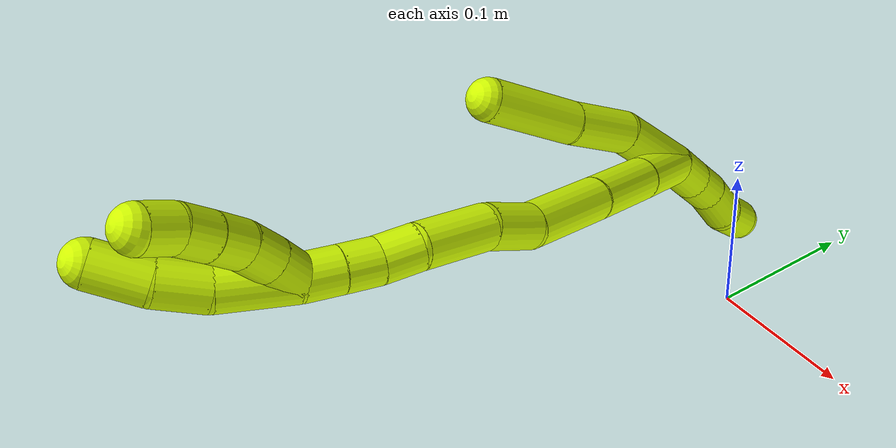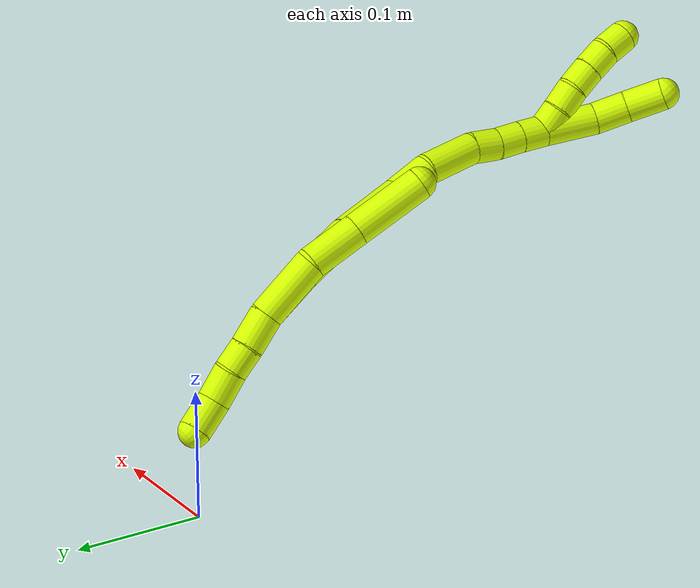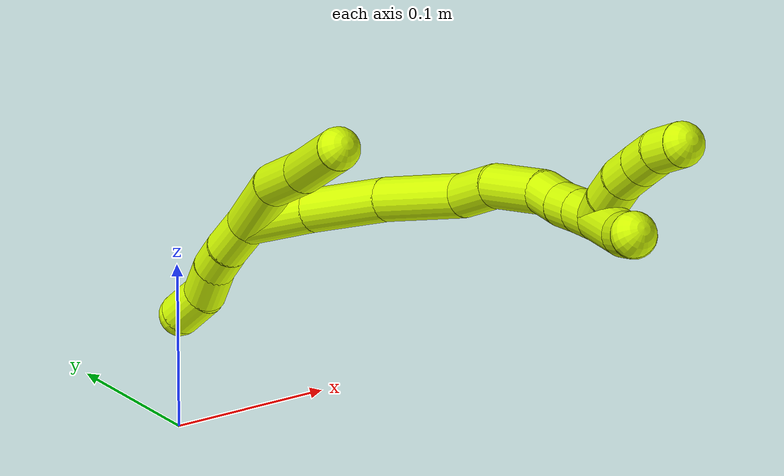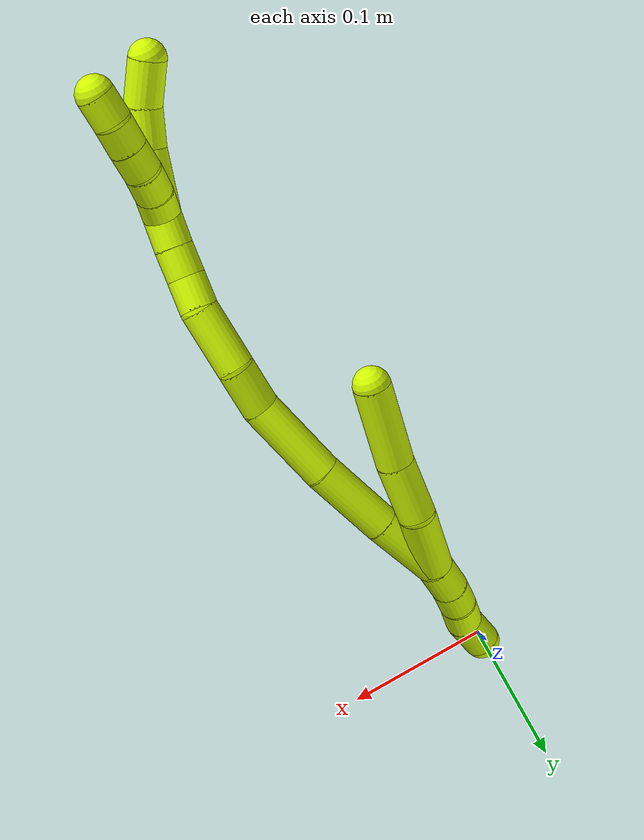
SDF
<sdf version="1.7">
 <world name="default">
  <model name="15">
   <static>0</static>
   <link name="15">
    <collision name="collision-cylinder-e_1_2_8">
     <pose>0.000799 0.004994 0.024537 -0.200799 0.031906 -0.003214</pose>
     <geometry><cylinder><radius>0.0125</radius><length>0.050106</length></cylinder></geometry>
     <surface>
      <friction><ode><mu>1.16</mu><mu2>1.16</mu2><slip1>0</slip1><slip2>0</slip2></ode></friction>
      <contact><ode><kp>1e+06</kp><kd>1</kd><max_vel>0</max_vel><min_depth>0.001</min_depth></ode></contact>
     </surface>
    </collision>
    <visual name="visual-cylinder-e_1_2_8">
     <pose>0.000799 0.004994 0.024537 -0.200799 0.031906 -0.003214</pose>
     <geometry><cylinder><radius>0.0125</radius><length>0.050106</length></cylinder></geometry>
     <material><ambient>0.835294 1 0 1</ambient></material>
    </visual>
    <collision name="collision-cylinder-e_2_8_9">
     <pose>0.000216 0.008682 0.069764 0.063096 -0.066568 -0.002102</pose>
     <geometry><cylinder><radius>0.0125</radius><length>0.041554</length></cylinder></geometry>
     <surface>
      <friction><ode><mu>1.16</mu><mu2>1.16</mu2><slip1>0</slip1><slip2>0</slip2></ode></friction>
      <contact><ode><kp>1e+06</kp><kd>1</kd><max_vel>0</max_vel><min_depth>0.001</min_depth></ode></contact>
     </surface>
    </collision>
    <visual name="visual-cylinder-e_2_8_9">
     <pose>0.000216 0.008682 0.069764 0.063096 -0.066568 -0.002102</pose>
     <geometry><cylinder><radius>0.0125</radius><length>0.041554</length></cylinder></geometry>
     <material><ambient>0.835294 1 0 1</ambient></material>
    </visual>
    <collision name="collision-cylinder-e_3_9_6">
     <pose>-0.004616 0.007931 0.119413 -0.019218 -0.11856 0.001141</pose>
     <geometry><cylinder><radius>0.0125</radius><length>0.05834</length></cylinder></geometry>
     <surface>
      <friction><ode><mu>1.16</mu><mu2>1.16</mu2><slip1>0</slip1><slip2>0</slip2></ode></friction>
      <contact><ode><kp>1e+06</kp><kd>1</kd><max_vel>0</max_vel><min_depth>0.001</min_depth></ode></contact>
     </surface>
    </collision>
    <visual name="visual-cylinder-e_3_9_6">
     <pose>-0.004616 0.007931 0.119413 -0.019218 -0.11856 0.001141</pose>
     <geometry><cylinder><radius>0.0125</radius><length>0.05834</length></cylinder></geometry>
     <material><ambient>0.835294 1 0 1</ambient></material>
    </visual>
    <collision name="collision-cylinder-e_1_2_10">
     <pose>-0.003277 -0.002464 -0.013181 2.95681 -0.239653 -1.8298</pose>
     <geometry><cylinder><radius>0.0125</radius><length>0.027608</length></cylinder></geometry>
     <surface>
      <friction><ode><mu>1.16</mu><mu2>1.16</mu2><slip1>0</slip1><slip2>0</slip2></ode></friction>
      <contact><ode><kp>1e+06</kp><kd>1</kd><max_vel>0</max_vel><min_depth>0.001</min_depth></ode></contact>
     </surface>
    </collision>
    <visual name="visual-cylinder-e_1_2_10">
     <pose>-0.003277 -0.002464 -0.013181 2.95681 -0.239653 -1.8298</pose>
     <geometry><cylinder><radius>0.0125</radius><length>0.027608</length></cylinder></geometry>
     <material><ambient>0.835294 1 0 1</ambient></material>
    </visual>
    <collision name="collision-cylinder-e_2_10_11">
     <pose>-0.008096 -0.007185 -0.036319 2.91868 -0.150002 -1.18252</pose>
     <geometry><cylinder><radius>0.0125</radius><length>0.020651</length></cylinder></geometry>
     <surface>
      <friction><ode><mu>1.16</mu><mu2>1.16</mu2><slip1>0</slip1><slip2>0</slip2></ode></friction>
      <contact><ode><kp>1e+06</kp><kd>1</kd><max_vel>0</max_vel><min_depth>0.001</min_depth></ode></contact>
     </surface>
    </collision>
    <visual name="visual-cylinder-e_2_10_11">
     <pose>-0.008096 -0.007185 -0.036319 2.91868 -0.150002 -1.18252</pose>
     <geometry><cylinder><radius>0.0125</radius><length>0.020651</length></cylinder></geometry>
     <material><ambient>0.835294 1 0 1</ambient></material>
    </visual>
    <collision name="collision-cylinder-e_3_11_12">
     <pose>-0.01171 -0.014164 -0.057897 2.75558 -0.163649 -0.794579</pose>
     <geometry><cylinder><radius>0.0125</radius><length>0.025428</length></cylinder></geometry>
     <surface>
      <friction><ode><mu>1.16</mu><mu2>1.16</mu2><slip1>0</slip1><slip2>0</slip2></ode></friction>
      <contact><ode><kp>1e+06</kp><kd>1</kd><max_vel>0</max_vel><min_depth>0.001</min_depth></ode></contact>
     </surface>
    </collision>
    <visual name="visual-cylinder-e_3_11_12">
     <pose>-0.01171 -0.014164 -0.057897 2.75558 -0.163649 -0.794579</pose>
     <geometry><cylinder><radius>0.0125</radius><length>0.025428</length></cylinder></geometry>
     <material><ambient>0.835294 1 0 1</ambient></material>
    </visual>
    <collision name="collision-cylinder-e_4_12_5">
     <pose>-0.017354 -0.019631 -0.082159 3.08279 -0.274939 -2.72265</pose>
     <geometry><cylinder><radius>0.0125</radius><length>0.026314</length></cylinder></geometry>
     <surface>
      <friction><ode><mu>1.16</mu><mu2>1.16</mu2><slip1>0</slip1><slip2>0</slip2></ode></friction>
      <contact><ode><kp>1e+06</kp><kd>1</kd><max_vel>0</max_vel><min_depth>0.001</min_depth></ode></contact>
     </surface>
    </collision>
    <visual name="visual-cylinder-e_4_12_5">
     <pose>-0.017354 -0.019631 -0.082159 3.08279 -0.274939 -2.72265</pose>
     <geometry><cylinder><radius>0.0125</radius><length>0.026314</length></cylinder></geometry>
     <material><ambient>0.835294 1 0 1</ambient></material>
    </visual>
    <collision name="collision-cylinder-e_1_2_13">
     <pose>0.006967 -0.007943 0.021303 0.356888 0.297353 0.054017</pose>
     <geometry><cylinder><radius>0.0125</radius><length>0.047559</length></cylinder></geometry>
     <surface>
      <friction><ode><mu>1.16</mu><mu2>1.16</mu2><slip1>0</slip1><slip2>0</slip2></ode></friction>
      <contact><ode><kp>1e+06</kp><kd>1</kd><max_vel>0</max_vel><min_depth>0.001</min_depth></ode></contact>
     </surface>
    </collision>
    <visual name="visual-cylinder-e_1_2_13">
     <pose>0.006967 -0.007943 0.021303 0.356888 0.297353 0.054017</pose>
     <geometry><cylinder><radius>0.0125</radius><length>0.047559</length></cylinder></geometry>
     <material><ambient>0.835294 1 0 1</ambient></material>
    </visual>
    <collision name="collision-cylinder-e_2_13_14">
     <pose>0.020507 -0.025425 0.067274 0.369005 0.243588 0.045678</pose>
     <geometry><cylinder><radius>0.0125</radius><length>0.054503</length></cylinder></geometry>
     <surface>
      <friction><ode><mu>1.16</mu><mu2>1.16</mu2><slip1>0</slip1><slip2>0</slip2></ode></friction>
      <contact><ode><kp>1e+06</kp><kd>1</kd><max_vel>0</max_vel><min_depth>0.001</min_depth></ode></contact>
     </surface>
    </collision>
    <visual name="visual-cylinder-e_2_13_14">
     <pose>0.020507 -0.025425 0.067274 0.369005 0.243588 0.045678</pose>
     <geometry><cylinder><radius>0.0125</radius><length>0.054503</length></cylinder></geometry>
     <material><ambient>0.835294 1 0 1</ambient></material>
    </visual>
    <collision name="collision-cylinder-e_3_14_15">
     <pose>0.031449 -0.04627 0.118951 0.396393 0.148135 0.029803</pose>
     <geometry><cylinder><radius>0.0125</radius><length>0.059211</length></cylinder></geometry>
     <surface>
      <friction><ode><mu>1.16</mu><mu2>1.16</mu2><slip1>0</slip1><slip2>0</slip2></ode></friction>
      <contact><ode><kp>1e+06</kp><kd>1</kd><max_vel>0</max_vel><min_depth>0.001</min_depth></ode></contact>
     </surface>
    </collision>
    <visual name="visual-cylinder-e_3_14_15">
     <pose>0.031449 -0.04627 0.118951 0.396393 0.148135 0.029803</pose>
     <geometry><cylinder><radius>0.0125</radius><length>0.059211</length></cylinder></geometry>
     <material><ambient>0.835294 1 0 1</ambient></material>
    </visual>
    <collision name="collision-cylinder-e_4_15_16">
     <pose>0.036382 -0.060046 0.161776 0.15498 0.035133 0.002728</pose>
     <geometry><cylinder><radius>0.0125</radius><length>0.032031</length></cylinder></geometry>
     <surface>
      <friction><ode><mu>1.16</mu><mu2>1.16</mu2><slip1>0</slip1><slip2>0</slip2></ode></friction>
      <contact><ode><kp>1e+06</kp><kd>1</kd><max_vel>0</max_vel><min_depth>0.001</min_depth></ode></contact>
     </surface>
    </collision>
    <visual name="visual-cylinder-e_4_15_16">
     <pose>0.036382 -0.060046 0.161776 0.15498 0.035133 0.002728</pose>
     <geometry><cylinder><radius>0.0125</radius><length>0.032031</length></cylinder></geometry>
     <material><ambient>0.835294 1 0 1</ambient></material>
    </visual>
    <collision name="collision-cylinder-e_5_16_17">
     <pose>0.035485 -0.070671 0.197688 0.385442 -0.06719 -0.013116</pose>
     <geometry><cylinder><radius>0.0125</radius><length>0.043478</length></cylinder></geometry>
     <surface>
      <friction><ode><mu>1.16</mu><mu2>1.16</mu2><slip1>0</slip1><slip2>0</slip2></ode></friction>
      <contact><ode><kp>1e+06</kp><kd>1</kd><max_vel>0</max_vel><min_depth>0.001</min_depth></ode></contact>
     </surface>
    </collision>
    <visual name="visual-cylinder-e_5_16_17">
     <pose>0.035485 -0.070671 0.197688 0.385442 -0.06719 -0.013116</pose>
     <geometry><cylinder><radius>0.0125</radius><length>0.043478</length></cylinder></geometry>
     <material><ambient>0.835294 1 0 1</ambient></material>
    </visual>
    <collision name="collision-cylinder-e_6_17_18">
     <pose>0.030769 -0.083843 0.226962 0.500435 -0.301837 -0.077694</pose>
     <geometry><cylinder><radius>0.0125</radius><length>0.021906</length></cylinder></geometry>
     <surface>
      <friction><ode><mu>1.16</mu><mu2>1.16</mu2><slip1>0</slip1><slip2>0</slip2></ode></friction>
      <contact><ode><kp>1e+06</kp><kd>1</kd><max_vel>0</max_vel><min_depth>0.001</min_depth></ode></contact>
     </surface>
    </collision>
    <visual name="visual-cylinder-e_6_17_18">
     <pose>0.030769 -0.083843 0.226962 0.500435 -0.301837 -0.077694</pose>
     <geometry><cylinder><radius>0.0125</radius><length>0.021906</length></cylinder></geometry>
     <material><ambient>0.835294 1 0 1</ambient></material>
    </visual>
    <collision name="collision-cylinder-e_7_18_19">
     <pose>0.025057 -0.092461 0.245269 0.375553 -0.245186 -0.046815</pose>
     <geometry><cylinder><radius>0.0125</radius><length>0.020236</length></cylinder></geometry>
     <surface>
      <friction><ode><mu>1.16</mu><mu2>1.16</mu2><slip1>0</slip1><slip2>0</slip2></ode></friction>
      <contact><ode><kp>1e+06</kp><kd>1</kd><max_vel>0</max_vel><min_depth>0.001</min_depth></ode></contact>
     </surface>
    </collision>
    <visual name="visual-cylinder-e_7_18_19">
     <pose>0.025057 -0.092461 0.245269 0.375553 -0.245186 -0.046815</pose>
     <geometry><cylinder><radius>0.0125</radius><length>0.020236</length></cylinder></geometry>
     <material><ambient>0.835294 1 0 1</ambient></material>
    </visual>
    <collision name="collision-cylinder-e_8_19_1">
     <pose>0.019634 -0.099749 0.263815 0.37326 -0.28538 -0.054243</pose>
     <geometry><cylinder><radius>0.0125</radius><length>0.021076</length></cylinder></geometry>
     <surface>
      <friction><ode><mu>1.16</mu><mu2>1.16</mu2><slip1>0</slip1><slip2>0</slip2></ode></friction>
      <contact><ode><kp>1e+06</kp><kd>1</kd><max_vel>0</max_vel><min_depth>0.001</min_depth></ode></contact>
     </surface>
    </collision>
    <visual name="visual-cylinder-e_8_19_1">
     <pose>0.019634 -0.099749 0.263815 0.37326 -0.28538 -0.054243</pose>
     <geometry><cylinder><radius>0.0125</radius><length>0.021076</length></cylinder></geometry>
     <material><ambient>0.835294 1 0 1</ambient></material>
    </visual>
    <collision name="collision-cylinder-e_1_1_20">
     <pose>0.017375 -0.100228 0.282676 -0.327459 0.070811 -0.011703</pose>
     <geometry><cylinder><radius>0.0125</radius><length>0.02</length></cylinder></geometry>
     <surface>
      <friction><ode><mu>1.16</mu><mu2>1.16</mu2><slip1>0</slip1><slip2>0</slip2></ode></friction>
      <contact><ode><kp>1e+06</kp><kd>1</kd><max_vel>0</max_vel><min_depth>0.001</min_depth></ode></contact>
     </surface>
    </collision>
    <visual name="visual-cylinder-e_1_1_20">
     <pose>0.017375 -0.100228 0.282676 -0.327459 0.070811 -0.011703</pose>
     <geometry><cylinder><radius>0.0125</radius><length>0.02</length></cylinder></geometry>
     <material><ambient>0.835294 1 0 1</ambient></material>
    </visual>
    <collision name="collision-cylinder-e_2_20_21">
     <pose>0.019459 -0.094634 0.301734 -0.243181 0.138098 -0.016901</pose>
     <geometry><cylinder><radius>0.0125</radius><length>0.02</length></cylinder></geometry>
     <surface>
      <friction><ode><mu>1.16</mu><mu2>1.16</mu2><slip1>0</slip1><slip2>0</slip2></ode></friction>
      <contact><ode><kp>1e+06</kp><kd>1</kd><max_vel>0</max_vel><min_depth>0.001</min_depth></ode></contact>
     </surface>
    </collision>
    <visual name="visual-cylinder-e_2_20_21">
     <pose>0.019459 -0.094634 0.301734 -0.243181 0.138098 -0.016901</pose>
     <geometry><cylinder><radius>0.0125</radius><length>0.02</length></cylinder></geometry>
     <material><ambient>0.835294 1 0 1</ambient></material>
    </visual>
    <collision name="collision-cylinder-e_3_21_22">
     <pose>0.022182 -0.091667 0.321239 -0.058812 0.135049 -0.003978</pose>
     <geometry><cylinder><radius>0.0125</radius><length>0.02</length></cylinder></geometry>
     <surface>
      <friction><ode><mu>1.16</mu><mu2>1.16</mu2><slip1>0</slip1><slip2>0</slip2></ode></friction>
      <contact><ode><kp>1e+06</kp><kd>1</kd><max_vel>0</max_vel><min_depth>0.001</min_depth></ode></contact>
     </surface>
    </collision>
    <visual name="visual-cylinder-e_3_21_22">
     <pose>0.022182 -0.091667 0.321239 -0.058812 0.135049 -0.003978</pose>
     <geometry><cylinder><radius>0.0125</radius><length>0.02</length></cylinder></geometry>
     <material><ambient>0.835294 1 0 1</ambient></material>
    </visual>
    <collision name="collision-cylinder-e_4_22_23">
     <pose>0.024492 -0.090669 0.341076 -0.041743 0.096493 -0.002016</pose>
     <geometry><cylinder><radius>0.0125</radius><length>0.02</length></cylinder></geometry>
     <surface>
      <friction><ode><mu>1.16</mu><mu2>1.16</mu2><slip1>0</slip1><slip2>0</slip2></ode></friction>
      <contact><ode><kp>1e+06</kp><kd>1</kd><max_vel>0</max_vel><min_depth>0.001</min_depth></ode></contact>
     </surface>
    </collision>
    <visual name="visual-cylinder-e_4_22_23">
     <pose>0.024492 -0.090669 0.341076 -0.041743 0.096493 -0.002016</pose>
     <geometry><cylinder><radius>0.0125</radius><length>0.02</length></cylinder></geometry>
     <material><ambient>0.835294 1 0 1</ambient></material>
    </visual>
    <collision name="collision-cylinder-e_5_23_4">
     <pose>0.025923 -0.09187 0.360878 0.16249 0.046767 0.003809</pose>
     <geometry><cylinder><radius>0.0125</radius><length>0.02</length></cylinder></geometry>
     <surface>
      <friction><ode><mu>1.16</mu><mu2>1.16</mu2><slip1>0</slip1><slip2>0</slip2></ode></friction>
      <contact><ode><kp>1e+06</kp><kd>1</kd><max_vel>0</max_vel><min_depth>0.001</min_depth></ode></contact>
     </surface>
    </collision>
    <visual name="visual-cylinder-e_5_23_4">
     <pose>0.025923 -0.09187 0.360878 0.16249 0.046767 0.003809</pose>
     <geometry><cylinder><radius>0.0125</radius><length>0.02</length></cylinder></geometry>
     <material><ambient>0.835294 1 0 1</ambient></material>
    </visual>
    <collision name="collision-cylinder-e_1_1_24">
     <pose>0.008506 -0.108922 0.291832 0.286796 -0.398372 -0.058277</pose>
     <geometry><cylinder><radius>0.0125</radius><length>0.04208</length></cylinder></geometry>
     <surface>
      <friction><ode><mu>1.16</mu><mu2>1.16</mu2><slip1>0</slip1><slip2>0</slip2></ode></friction>
      <contact><ode><kp>1e+06</kp><kd>1</kd><max_vel>0</max_vel><min_depth>0.001</min_depth></ode></contact>
     </surface>
    </collision>
    <visual name="visual-cylinder-e_1_1_24">
     <pose>0.008506 -0.108922 0.291832 0.286796 -0.398372 -0.058277</pose>
     <geometry><cylinder><radius>0.0125</radius><length>0.04208</length></cylinder></geometry>
     <material><ambient>0.835294 1 0 1</ambient></material>
    </visual>
    <collision name="collision-cylinder-e_2_24_25">
     <pose>-0.005106 -0.115014 0.322987 0.04824 -0.409098 -0.010009</pose>
     <geometry><cylinder><radius>0.0125</radius><length>0.0274</length></cylinder></geometry>
     <surface>
      <friction><ode><mu>1.16</mu><mu2>1.16</mu2><slip1>0</slip1><slip2>0</slip2></ode></friction>
      <contact><ode><kp>1e+06</kp><kd>1</kd><max_vel>0</max_vel><min_depth>0.001</min_depth></ode></contact>
     </surface>
    </collision>
    <visual name="visual-cylinder-e_2_24_25">
     <pose>-0.005106 -0.115014 0.322987 0.04824 -0.409098 -0.010009</pose>
     <geometry><cylinder><radius>0.0125</radius><length>0.0274</length></cylinder></geometry>
     <material><ambient>0.835294 1 0 1</ambient></material>
    </visual>
    <collision name="collision-cylinder-e_3_25_3">
     <pose>-0.01824 -0.11373 0.34859 -0.143849 -0.527706 0.038923</pose>
     <geometry><cylinder><radius>0.0125</radius><length>0.03052</length></cylinder></geometry>
     <surface>
      <friction><ode><mu>1.16</mu><mu2>1.16</mu2><slip1>0</slip1><slip2>0</slip2></ode></friction>
      <contact><ode><kp>1e+06</kp><kd>1</kd><max_vel>0</max_vel><min_depth>0.001</min_depth></ode></contact>
     </surface>
    </collision>
    <visual name="visual-cylinder-e_3_25_3">
     <pose>-0.01824 -0.11373 0.34859 -0.143849 -0.527706 0.038923</pose>
     <geometry><cylinder><radius>0.0125</radius><length>0.03052</length></cylinder></geometry>
     <material><ambient>0.835294 1 0 1</ambient></material>
    </visual>
    <collision name="collision-sphere-3">
     <pose>-0.025924 -0.11184 0.361637 0 -0 0</pose>
     <geometry><sphere><radius>0.0125</radius></sphere></geometry>
     <surface>
      <friction><ode><mu>1.16</mu><mu2>1.16</mu2><slip1>0</slip1><slip2>0</slip2></ode></friction>
      <contact><ode><kp>1e+06</kp><kd>1</kd><max_vel>0</max_vel><min_depth>0.001</min_depth></ode></contact>
     </surface>
    </collision>
    <visual name="visual-sphere-3">
     <pose>-0.025924 -0.11184 0.361637 0 -0 0</pose>
     <geometry><sphere><radius>0.0125</radius></sphere></geometry>
     <material><ambient>0.835294 1 0 1</ambient></material>
    </visual>
    <collision name="collision-sphere-25">
     <pose>-0.010556 -0.11562 0.335542 0 -0 0</pose>
     <geometry><sphere><radius>0.0125</radius></sphere></geometry>
     <surface>
      <friction><ode><mu>1.16</mu><mu2>1.16</mu2><slip1>0</slip1><slip2>0</slip2></ode></friction>
      <contact><ode><kp>1e+06</kp><kd>1</kd><max_vel>0</max_vel><min_depth>0.001</min_depth></ode></contact>
     </surface>
    </collision>
    <visual name="visual-sphere-25">
     <pose>-0.010556 -0.11562 0.335542 0 -0 0</pose>
     <geometry><sphere><radius>0.0125</radius></sphere></geometry>
     <material><ambient>0.835294 1 0 1</ambient></material>
    </visual>
    <collision name="collision-sphere-24">
     <pose>0.000344 -0.114408 0.310432 0 -0 0</pose>
     <geometry><sphere><radius>0.0125</radius></sphere></geometry>
     <surface>
      <friction><ode><mu>1.16</mu><mu2>1.16</mu2><slip1>0</slip1><slip2>0</slip2></ode></friction>
      <contact><ode><kp>1e+06</kp><kd>1</kd><max_vel>0</max_vel><min_depth>0.001</min_depth></ode></contact>
     </surface>
    </collision>
    <visual name="visual-sphere-24">
     <pose>0.000344 -0.114408 0.310432 0 -0 0</pose>
     <geometry><sphere><radius>0.0125</radius></sphere></geometry>
     <material><ambient>0.835294 1 0 1</ambient></material>
    </visual>
    <collision name="collision-sphere-4">
     <pose>0.02639 -0.093486 0.370736 0 -0 0</pose>
     <geometry><sphere><radius>0.0125</radius></sphere></geometry>
     <surface>
      <friction><ode><mu>1.16</mu><mu2>1.16</mu2><slip1>0</slip1><slip2>0</slip2></ode></friction>
      <contact><ode><kp>1e+06</kp><kd>1</kd><max_vel>0</max_vel><min_depth>0.001</min_depth></ode></contact>
     </surface>
    </collision>
    <visual name="visual-sphere-4">
     <pose>0.02639 -0.093486 0.370736 0 -0 0</pose>
     <geometry><sphere><radius>0.0125</radius></sphere></geometry>
     <material><ambient>0.835294 1 0 1</ambient></material>
    </visual>
    <collision name="collision-sphere-23">
     <pose>0.025455 -0.090254 0.351021 0 -0 0</pose>
     <geometry><sphere><radius>0.0125</radius></sphere></geometry>
     <surface>
      <friction><ode><mu>1.16</mu><mu2>1.16</mu2><slip1>0</slip1><slip2>0</slip2></ode></friction>
      <contact><ode><kp>1e+06</kp><kd>1</kd><max_vel>0</max_vel><min_depth>0.001</min_depth></ode></contact>
     </surface>
    </collision>
    <visual name="visual-sphere-23">
     <pose>0.025455 -0.090254 0.351021 0 -0 0</pose>
     <geometry><sphere><radius>0.0125</radius></sphere></geometry>
     <material><ambient>0.835294 1 0 1</ambient></material>
    </visual>
    <collision name="collision-sphere-22">
     <pose>0.023528 -0.091085 0.331131 0 -0 0</pose>
     <geometry><sphere><radius>0.0125</radius></sphere></geometry>
     <surface>
      <friction><ode><mu>1.16</mu><mu2>1.16</mu2><slip1>0</slip1><slip2>0</slip2></ode></friction>
      <contact><ode><kp>1e+06</kp><kd>1</kd><max_vel>0</max_vel><min_depth>0.001</min_depth></ode></contact>
     </surface>
    </collision>
    <visual name="visual-sphere-22">
     <pose>0.023528 -0.091085 0.331131 0 -0 0</pose>
     <geometry><sphere><radius>0.0125</radius></sphere></geometry>
     <material><ambient>0.835294 1 0 1</ambient></material>
    </visual>
    <collision name="collision-sphere-21">
     <pose>0.020836 -0.092249 0.311348 0 -0 0</pose>
     <geometry><sphere><radius>0.0125</radius></sphere></geometry>
     <surface>
      <friction><ode><mu>1.16</mu><mu2>1.16</mu2><slip1>0</slip1><slip2>0</slip2></ode></friction>
      <contact><ode><kp>1e+06</kp><kd>1</kd><max_vel>0</max_vel><min_depth>0.001</min_depth></ode></contact>
     </surface>
    </collision>
    <visual name="visual-sphere-21">
     <pose>0.020836 -0.092249 0.311348 0 -0 0</pose>
     <geometry><sphere><radius>0.0125</radius></sphere></geometry>
     <material><ambient>0.835294 1 0 1</ambient></material>
    </visual>
    <collision name="collision-sphere-20">
     <pose>0.018083 -0.097019 0.292121 0 -0 0</pose>
     <geometry><sphere><radius>0.0125</radius></sphere></geometry>
     <surface>
      <friction><ode><mu>1.16</mu><mu2>1.16</mu2><slip1>0</slip1><slip2>0</slip2></ode></friction>
      <contact><ode><kp>1e+06</kp><kd>1</kd><max_vel>0</max_vel><min_depth>0.001</min_depth></ode></contact>
     </surface>
    </collision>
    <visual name="visual-sphere-20">
     <pose>0.018083 -0.097019 0.292121 0 -0 0</pose>
     <geometry><sphere><radius>0.0125</radius></sphere></geometry>
     <material><ambient>0.835294 1 0 1</ambient></material>
    </visual>
    <collision name="collision-sphere-11">
     <pose>-0.009639 -0.009442 -0.046276 0 -0 0</pose>
     <geometry><sphere><radius>0.0125</radius></sphere></geometry>
     <surface>
      <friction><ode><mu>1.16</mu><mu2>1.16</mu2><slip1>0</slip1><slip2>0</slip2></ode></friction>
      <contact><ode><kp>1e+06</kp><kd>1</kd><max_vel>0</max_vel><min_depth>0.001</min_depth></ode></contact>
     </surface>
    </collision>
    <visual name="visual-sphere-11">
     <pose>-0.009639 -0.009442 -0.046276 0 -0 0</pose>
     <geometry><sphere><radius>0.0125</radius></sphere></geometry>
     <material><ambient>0.835294 1 0 1</ambient></material>
    </visual>
    <collision name="collision-sphere-10">
     <pose>-0.006553 -0.004928 -0.026362 0 -0 0</pose>
     <geometry><sphere><radius>0.0125</radius></sphere></geometry>
     <surface>
      <friction><ode><mu>1.16</mu><mu2>1.16</mu2><slip1>0</slip1><slip2>0</slip2></ode></friction>
      <contact><ode><kp>1e+06</kp><kd>1</kd><max_vel>0</max_vel><min_depth>0.001</min_depth></ode></contact>
     </surface>
    </collision>
    <visual name="visual-sphere-10">
     <pose>-0.006553 -0.004928 -0.026362 0 -0 0</pose>
     <geometry><sphere><radius>0.0125</radius></sphere></geometry>
     <material><ambient>0.835294 1 0 1</ambient></material>
    </visual>
    <collision name="collision-sphere-6">
     <pose>-0.008066 0.008488 0.148373 0 -0 0</pose>
     <geometry><sphere><radius>0.0125</radius></sphere></geometry>
     <surface>
      <friction><ode><mu>1.16</mu><mu2>1.16</mu2><slip1>0</slip1><slip2>0</slip2></ode></friction>
      <contact><ode><kp>1e+06</kp><kd>1</kd><max_vel>0</max_vel><min_depth>0.001</min_depth></ode></contact>
     </surface>
    </collision>
    <visual name="visual-sphere-6">
     <pose>-0.008066 0.008488 0.148373 0 -0 0</pose>
     <geometry><sphere><radius>0.0125</radius></sphere></geometry>
     <material><ambient>0.835294 1 0 1</ambient></material>
    </visual>
    <collision name="collision-sphere-9">
     <pose>-0.001166 0.007374 0.090453 0 -0 0</pose>
     <geometry><sphere><radius>0.0125</radius></sphere></geometry>
     <surface>
      <friction><ode><mu>1.16</mu><mu2>1.16</mu2><slip1>0</slip1><slip2>0</slip2></ode></friction>
      <contact><ode><kp>1e+06</kp><kd>1</kd><max_vel>0</max_vel><min_depth>0.001</min_depth></ode></contact>
     </surface>
    </collision>
    <visual name="visual-sphere-9">
     <pose>-0.001166 0.007374 0.090453 0 -0 0</pose>
     <geometry><sphere><radius>0.0125</radius></sphere></geometry>
     <material><ambient>0.835294 1 0 1</ambient></material>
    </visual>
    <collision name="collision-sphere-2">
     <geometry><sphere><radius>0.0125</radius></sphere></geometry>
     <surface>
      <friction><ode><mu>1.16</mu><mu2>1.16</mu2><slip1>0</slip1><slip2>0</slip2></ode></friction>
      <contact><ode><kp>1e+06</kp><kd>1</kd><max_vel>0</max_vel><min_depth>0.001</min_depth></ode></contact>
     </surface>
    </collision>
    <visual name="visual-sphere-2">
     <geometry><sphere><radius>0.0125</radius></sphere></geometry>
     <material><ambient>0.835294 1 0 1</ambient></material>
    </visual>
    <collision name="collision-sphere-19">
     <pose>0.022601 -0.096061 0.2544 0 -0 0</pose>
     <geometry><sphere><radius>0.0125</radius></sphere></geometry>
     <surface>
      <friction><ode><mu>1.16</mu><mu2>1.16</mu2><slip1>0</slip1><slip2>0</slip2></ode></friction>
      <contact><ode><kp>1e+06</kp><kd>1</kd><max_vel>0</max_vel><min_depth>0.001</min_depth></ode></contact>
     </surface>
    </collision>
    <visual name="visual-sphere-19">
     <pose>0.022601 -0.096061 0.2544 0 -0 0</pose>
     <geometry><sphere><radius>0.0125</radius></sphere></geometry>
     <material><ambient>0.835294 1 0 1</ambient></material>
    </visual>
    <collision name="collision-sphere-8">
     <pose>0.001598 0.009989 0.049074 0 -0 0</pose>
     <geometry><sphere><radius>0.0125</radius></sphere></geometry>
     <surface>
      <friction><ode><mu>1.16</mu><mu2>1.16</mu2><slip1>0</slip1><slip2>0</slip2></ode></friction>
      <contact><ode><kp>1e+06</kp><kd>1</kd><max_vel>0</max_vel><min_depth>0.001</min_depth></ode></contact>
     </surface>
    </collision>
    <visual name="visual-sphere-8">
     <pose>0.001598 0.009989 0.049074 0 -0 0</pose>
     <geometry><sphere><radius>0.0125</radius></sphere></geometry>
     <material><ambient>0.835294 1 0 1</ambient></material>
    </visual>
    <collision name="collision-sphere-12">
     <pose>-0.013782 -0.018887 -0.069518 0 -0 0</pose>
     <geometry><sphere><radius>0.0125</radius></sphere></geometry>
     <surface>
      <friction><ode><mu>1.16</mu><mu2>1.16</mu2><slip1>0</slip1><slip2>0</slip2></ode></friction>
      <contact><ode><kp>1e+06</kp><kd>1</kd><max_vel>0</max_vel><min_depth>0.001</min_depth></ode></contact>
     </surface>
    </collision>
    <visual name="visual-sphere-12">
     <pose>-0.013782 -0.018887 -0.069518 0 -0 0</pose>
     <geometry><sphere><radius>0.0125</radius></sphere></geometry>
     <material><ambient>0.835294 1 0 1</ambient></material>
    </visual>
    <collision name="collision-sphere-5">
     <pose>-0.020926 -0.020376 -0.094799 0 -0 0</pose>
     <geometry><sphere><radius>0.0125</radius></sphere></geometry>
     <surface>
      <friction><ode><mu>1.16</mu><mu2>1.16</mu2><slip1>0</slip1><slip2>0</slip2></ode></friction>
      <contact><ode><kp>1e+06</kp><kd>1</kd><max_vel>0</max_vel><min_depth>0.001</min_depth></ode></contact>
     </surface>
    </collision>
    <visual name="visual-sphere-5">
     <pose>-0.020926 -0.020376 -0.094799 0 -0 0</pose>
     <geometry><sphere><radius>0.0125</radius></sphere></geometry>
     <material><ambient>0.835294 1 0 1</ambient></material>
    </visual>
    <collision name="collision-sphere-13">
     <pose>0.013934 -0.015886 0.042607 0 -0 0</pose>
     <geometry><sphere><radius>0.0125</radius></sphere></geometry>
     <surface>
      <friction><ode><mu>1.16</mu><mu2>1.16</mu2><slip1>0</slip1><slip2>0</slip2></ode></friction>
      <contact><ode><kp>1e+06</kp><kd>1</kd><max_vel>0</max_vel><min_depth>0.001</min_depth></ode></contact>
     </surface>
    </collision>
    <visual name="visual-sphere-13">
     <pose>0.013934 -0.015886 0.042607 0 -0 0</pose>
     <geometry><sphere><radius>0.0125</radius></sphere></geometry>
     <material><ambient>0.835294 1 0 1</ambient></material>
    </visual>
    <collision name="collision-sphere-14">
     <pose>0.02708 -0.034964 0.09194 0 -0 0</pose>
     <geometry><sphere><radius>0.0125</radius></sphere></geometry>
     <surface>
      <friction><ode><mu>1.16</mu><mu2>1.16</mu2><slip1>0</slip1><slip2>0</slip2></ode></friction>
      <contact><ode><kp>1e+06</kp><kd>1</kd><max_vel>0</max_vel><min_depth>0.001</min_depth></ode></contact>
     </surface>
    </collision>
    <visual name="visual-sphere-14">
     <pose>0.02708 -0.034964 0.09194 0 -0 0</pose>
     <geometry><sphere><radius>0.0125</radius></sphere></geometry>
     <material><ambient>0.835294 1 0 1</ambient></material>
    </visual>
    <collision name="collision-sphere-15">
     <pose>0.035819 -0.057575 0.145962 0 -0 0</pose>
     <geometry><sphere><radius>0.0125</radius></sphere></geometry>
     <surface>
      <friction><ode><mu>1.16</mu><mu2>1.16</mu2><slip1>0</slip1><slip2>0</slip2></ode></friction>
      <contact><ode><kp>1e+06</kp><kd>1</kd><max_vel>0</max_vel><min_depth>0.001</min_depth></ode></contact>
     </surface>
    </collision>
    <visual name="visual-sphere-15">
     <pose>0.035819 -0.057575 0.145962 0 -0 0</pose>
     <geometry><sphere><radius>0.0125</radius></sphere></geometry>
     <material><ambient>0.835294 1 0 1</ambient></material>
    </visual>
    <collision name="collision-sphere-16">
     <pose>0.036944 -0.062516 0.17759 0 -0 0</pose>
     <geometry><sphere><radius>0.0125</radius></sphere></geometry>
     <surface>
      <friction><ode><mu>1.16</mu><mu2>1.16</mu2><slip1>0</slip1><slip2>0</slip2></ode></friction>
      <contact><ode><kp>1e+06</kp><kd>1</kd><max_vel>0</max_vel><min_depth>0.001</min_depth></ode></contact>
     </surface>
    </collision>
    <visual name="visual-sphere-16">
     <pose>0.036944 -0.062516 0.17759 0 -0 0</pose>
     <geometry><sphere><radius>0.0125</radius></sphere></geometry>
     <material><ambient>0.835294 1 0 1</ambient></material>
    </visual>
    <collision name="collision-sphere-17">
     <pose>0.034025 -0.078826 0.217786 0 -0 0</pose>
     <geometry><sphere><radius>0.0125</radius></sphere></geometry>
     <surface>
      <friction><ode><mu>1.16</mu><mu2>1.16</mu2><slip1>0</slip1><slip2>0</slip2></ode></friction>
      <contact><ode><kp>1e+06</kp><kd>1</kd><max_vel>0</max_vel><min_depth>0.001</min_depth></ode></contact>
     </surface>
    </collision>
    <visual name="visual-sphere-17">
     <pose>0.034025 -0.078826 0.217786 0 -0 0</pose>
     <geometry><sphere><radius>0.0125</radius></sphere></geometry>
     <material><ambient>0.835294 1 0 1</ambient></material>
    </visual>
    <collision name="collision-sphere-18">
     <pose>0.027513 -0.088861 0.236137 0 -0 0</pose>
     <geometry><sphere><radius>0.0125</radius></sphere></geometry>
     <surface>
      <friction><ode><mu>1.16</mu><mu2>1.16</mu2><slip1>0</slip1><slip2>0</slip2></ode></friction>
      <contact><ode><kp>1e+06</kp><kd>1</kd><max_vel>0</max_vel><min_depth>0.001</min_depth></ode></contact>
     </surface>
    </collision>
    <visual name="visual-sphere-18">
     <pose>0.027513 -0.088861 0.236137 0 -0 0</pose>
     <geometry><sphere><radius>0.0125</radius></sphere></geometry>
     <material><ambient>0.835294 1 0 1</ambient></material>
    </visual>
    <collision name="collision-sphere-1">
     <pose>0.016667 -0.103436 0.273231 0 -0 0</pose>
     <geometry><sphere><radius>0.0125</radius></sphere></geometry>
     <surface>
      <friction><ode><mu>1.16</mu><mu2>1.16</mu2><slip1>0</slip1><slip2>0</slip2></ode></friction>
      <contact><ode><kp>1e+06</kp><kd>1</kd><max_vel>0</max_vel><min_depth>0.001</min_depth></ode></contact>
     </surface>
    </collision>
    <visual name="visual-sphere-1">
     <pose>0.016667 -0.103436 0.273231 0 -0 0</pose>
     <geometry><sphere><radius>0.0125</radius></sphere></geometry>
     <material><ambient>0.835294 1 0 1</ambient></material>
    </visual>
    <inertial>
     <pose>0.010976 -0.047888 0.148351 0 -0 0</pose>
     <mass>0.75</mass>
     <inertia>
      <ixx>0.000111</ixx>
      <ixy>0</ixy>
      <ixz>0</ixz>
      <iyy>0.000105</iyy>
      <iyz>0</iyz>
      <izz>6.4e-05</izz>
     </inertia>
    </inertial>
   </link>
   <pose>0.006905 -0.064155 0.14367 0.937392 -0.391926 0.202834</pose>
  </model>
 </world>
</sdf>
